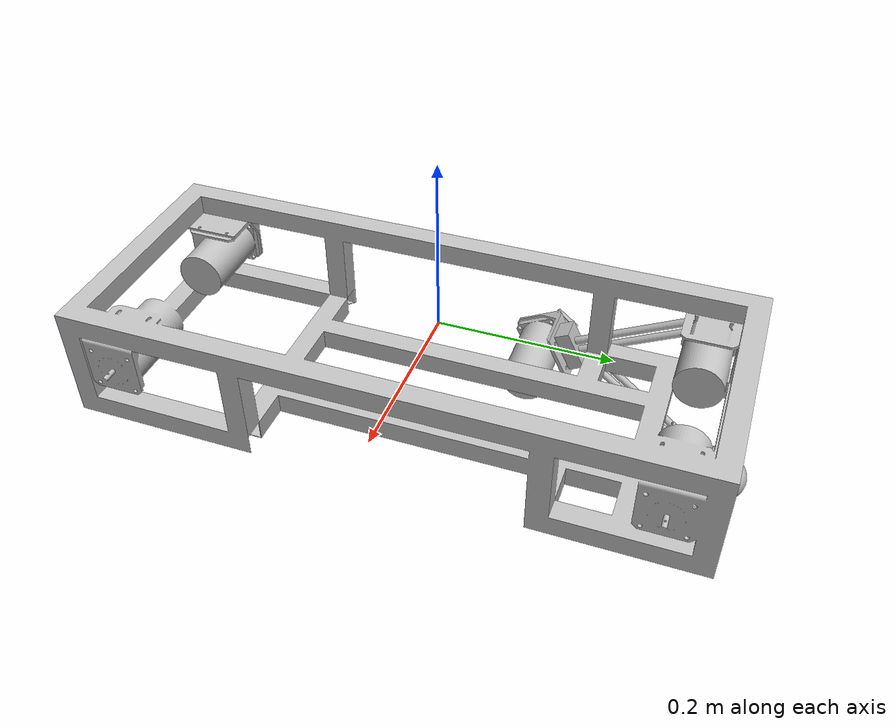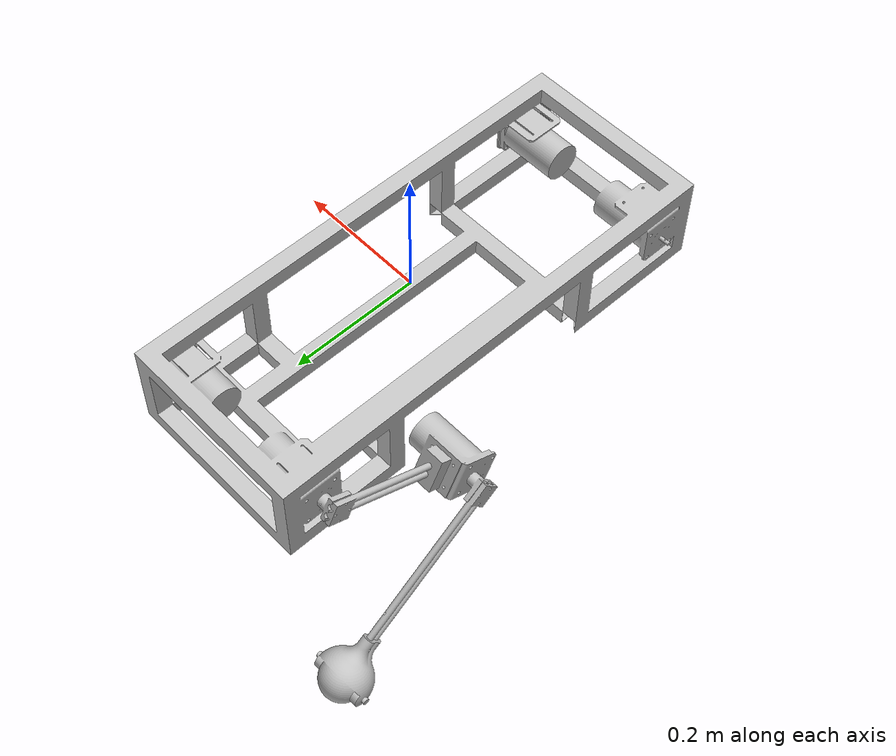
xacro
<?xml version="1.0" ?>
<robot name="mrm" xmlns:xacro="http://www.ros.org/wiki/xacro">
    <xacro:include filename="$(find robot_leg)/urdf/links_joints.xacro"/>
    <!-- first leg-->
    <MESH name="base_link"
          origin_xyz="0 0 0"
          origin_rpy="1.57070 0 0"
	  meshfile="package://robot_leg/meshes/frame.dae"
	  meshscale="1 1 1"
	  mass="1"
	  ixx="1"
	  ixy="1"
	  ixz="1"
	  iyy="1"
	  iyz="1"
	  izz="1">
    </MESH>
    <MESH name="link2"
          origin_xyz="0.25 -0.575 0.15"
          origin_rpy="1.9607 0 3.1416"
	  meshfile="package://robot_leg/meshes/upper link left.dae"
	  meshscale="1 1 1"
	  mass="1"
	  ixx="1"
	  ixy="1"
	  ixz="1"
	  iyy="1"
	  iyz="1"
	  izz="1">
    </MESH>
    <JOINT_REVOLUTE name="base_link__link2" parent="base_link" child="link2" axis_xyz="1 0 0" origin_rpy="0 0 0" origin_xyz="0 0.2875 -0.044"/>
    <MESH name="dxel2"
          origin_xyz="0.25 -0.42 0.09"
          origin_rpy="1.57070 0 3.1416"
	  meshfile="package://robot_leg/meshes/lower link left.dae"
	  meshscale="1 1 1"
	  mass="1"
	  ixx="1"
	  ixy="1"
	  ixz="1"
	  iyy="1"
	  iyz="1"
	  izz="1">
    </MESH>
    <JOINT_REVOLUTE name="link2__dxel2" parent="link2" child="dxel2" axis_xyz="1 0 0" origin_rpy="0 0 0" origin_xyz="0 -0.22 -0.0945"/>

</robot>

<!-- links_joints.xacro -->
<robot xmlns:xacro="http://www.ros.org/wiki/xacro">

  <xacro:macro name="JOINT_REVOLUTE" params="name axis_xyz origin_rpy origin_xyz parent child ">
    <joint name="${name}" type="revolute">
      <axis xyz="${axis_xyz}" />
      <origin rpy="${origin_rpy}" xyz="${origin_xyz}" />
      <limit effort="1000.0" lower="-3.14" upper="3.14" velocity="0.5"/>
      <parent link="${parent}" />
      <child link="${child}" />
    </joint>
    <transmission name="trans_${name}">
      <type>transmission_interface/SimpleTransmission</type>
      <joint name="${name}">
        <hardwareInterface>hardware_interface/EffortJointInterface</hardwareInterface>
      </joint>
      <actuator name="motor_${name}">
        <hardwareInterface>hardware_interface/EffortJointInterface</hardwareInterface>
        <mechanicalReduction>1</mechanicalReduction>
      </actuator>
    </transmission>
  </xacro:macro>
  <xacro:macro name="JOINT_FIXED" params="name axis_xyz origin_rpy origin_xyz parent child ">
    <joint name="${name}" type="fixed">
      <axis xyz="${axis_xyz}" />
      <origin rpy="${origin_rpy}" xyz="${origin_xyz}" />
      <parent link="${parent}" />
      <child link="${child}" />
    </joint>
  </xacro:macro>

  <xacro:macro name="CYLINDER" params="name origin_xyz origin_rpy radius length">
    <link name="${name}">
      <collision>
        <origin rpy="${origin_rpy}" xyz="${origin_xyz}" />
        <geometry>
          <cylinder radius="${radius}" length="${length}" />
        </geometry>
      </collision>
      <visual>
        <origin rpy="${origin_rpy}" xyz="${origin_xyz}" />
        <geometry>
          <cylinder radius="${radius}" length="${length}" />
        </geometry>
      </visual>
    </link>
  </xacro:macro>

  <xacro:macro name="BOX" params="name origin_xyz origin_rpy size">
    <link name="${name}">
       <inertial>
        <mass value="10" />
        <origin rpy="${origin_rpy}" xyz="${origin_xyz}" />
        <inertia ixx="1" ixy="1" ixz="1" iyy="1" iyz="1" izz="1" />
      </inertial>
      <collision>
        <origin rpy="${origin_rpy}" xyz="${origin_xyz}" />
        <geometry>
          <box size="${size}" />
        </geometry>
      </collision>
      <visual>
        <origin rpy="${origin_rpy}" xyz="${origin_xyz}" />
        <geometry>
          <box size="${size}" />
        </geometry>
      </visual>
    </link>
  </xacro:macro>

  <xacro:macro name="MESH" params="name origin_xyz origin_rpy meshfile meshscale mass ixx ixy ixz iyy iyz izz">
    <link name="${name}">
      <inertial>
        <mass value="${mass}" />
        <origin rpy="${origin_rpy}" xyz="${origin_xyz}" />
        <inertia ixx="${ixx}" ixy="${ixy}" ixz="${ixz}" iyy="${iyy}" iyz="${iyz}" izz="${izz}" />
      </inertial>
      <collision>
        <origin rpy="${origin_rpy}" xyz="${origin_xyz}" />
        <geometry>
          <mesh filename="${meshfile}" scale="${meshscale}"/>
        </geometry>
      </collision>
      <visual>
        <origin rpy="${origin_rpy}" xyz="${origin_xyz}" />
        <geometry>
          <mesh filename="${meshfile}" scale="${meshscale}"/>
        </geometry>
        <material name="silver">
          <color rgba="${192/255} ${192/255} ${192/255} 1.0"/>
        </material>
      </visual>
    </link>
  </xacro:macro>

</robot>
